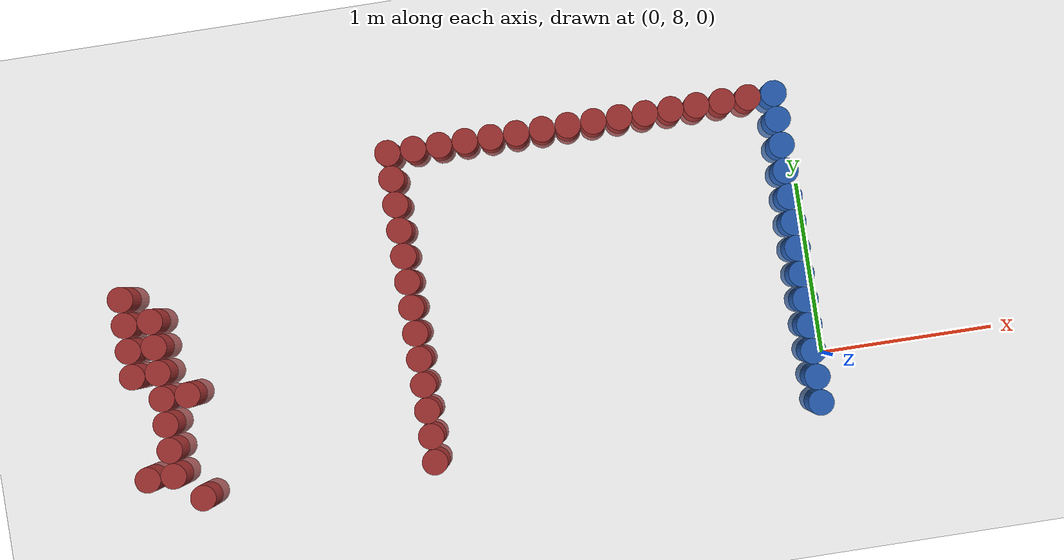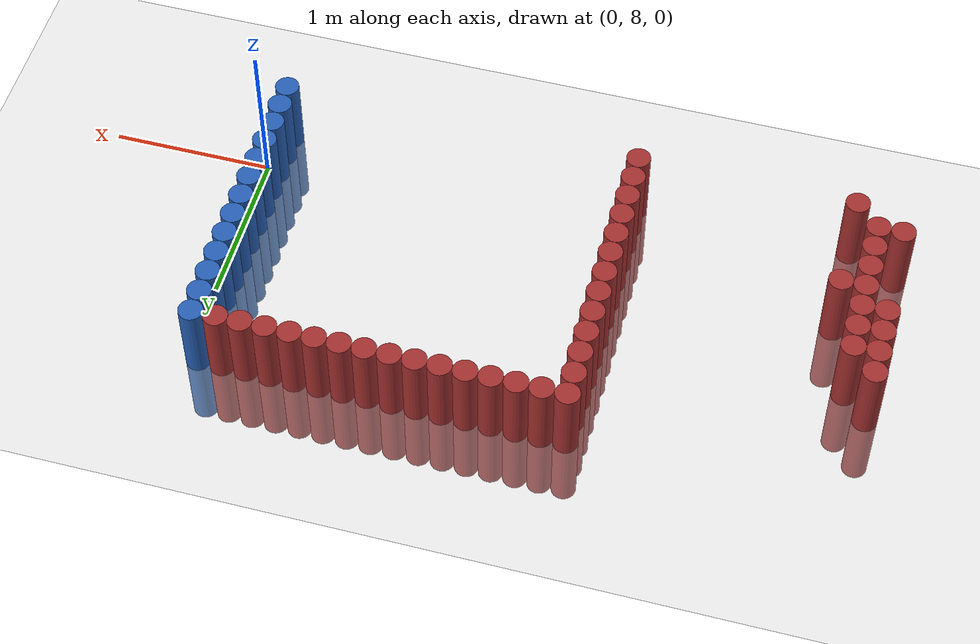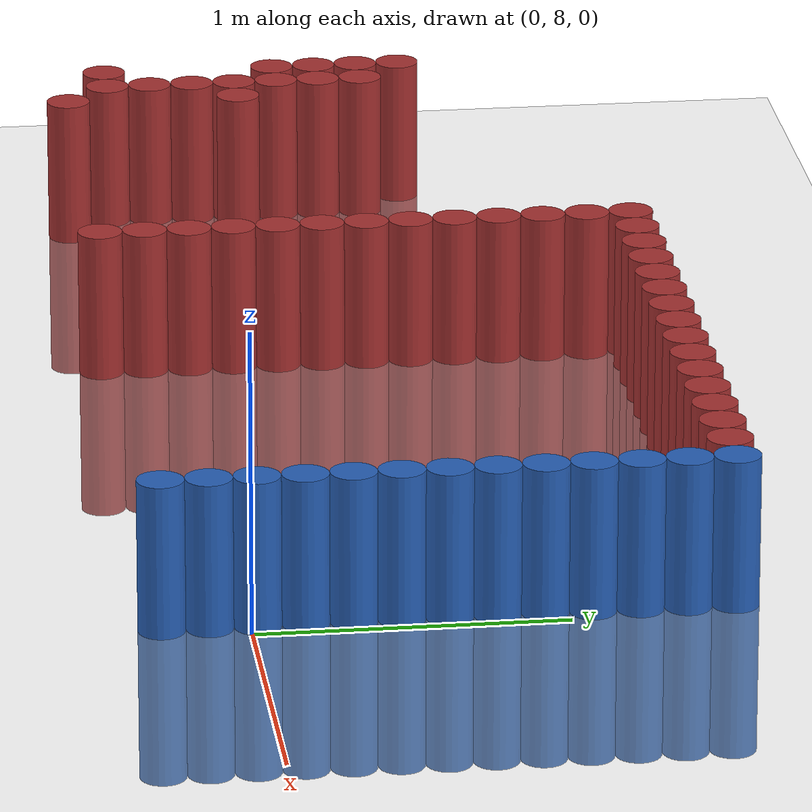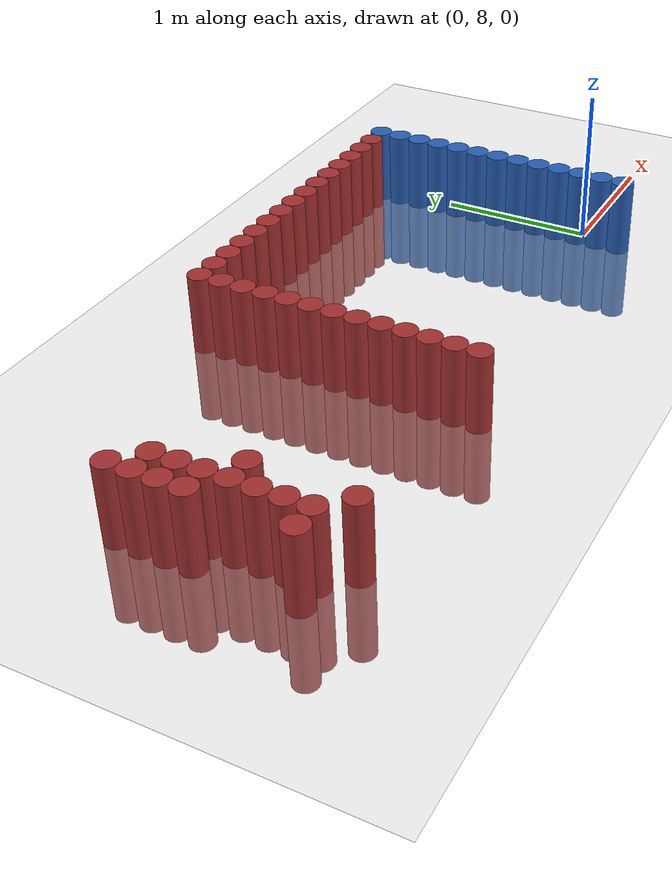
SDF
<sdf version="1.6">
 <world name="default">
  <model name="ground_plane">
   <static>1</static>
   <link name="link">
    <collision name="collision">
     <geometry><plane><normal>0 0 1</normal><size>100 100</size></plane></geometry>
     <surface><friction><ode><mu>100</mu><mu2>50</mu2></ode></friction></surface>
    </collision>
    <visual name="visual">
     <cast_shadows>0</cast_shadows>
     <geometry><plane><normal>0 0 1</normal><size>100 100</size></plane></geometry>
     <material>
      <script><uri>file://media/materials/scripts/gazebo.material</uri><name>Gazebo/Grey</name></script>
     </material>
    </visual>
   </link>
  </model>
  <model name="unit_cylinder_258">
   <static>1</static>
   <pose>-3.975000 7.875000 0.000000 0.000000 0.000000 0.000000</pose>
   <link name="link">
    <inertial>
     <mass>1</mass>
     <inertia><ixx>0.145833</ixx><ixy>0</ixy><ixz>0</ixz><iyy>0.145833</iyy><iyz>0</iyz><izz>0.125</izz></inertia>
    </inertial>
    <collision name="collision">
     <geometry><cylinder><radius>0.075000</radius><length>1</length></cylinder></geometry>
    </collision>
    <visual name="visual">
     <geometry><cylinder><radius>0.075000</radius><length>1</length></cylinder></geometry>
     <material>
      <ambient>0.648000 0.192000 0.192000 1</ambient>
      <diffuse>0.648000 0.192000 0.192000 1</diffuse>
     </material>
     <material>
      <script><name>Gazebo/Grey</name><uri>file://media/materials/scripts/gazebo.material</uri></script>
     </material>
    </visual>
   </link>
  </model>
  <model name="unit_cylinder_259">
   <static>1</static>
   <pose>-3.975000 8.475000 0.000000 0.000000 0.000000 0.000000</pose>
   <link name="link">
    <inertial>
     <mass>1</mass>
     <inertia><ixx>0.145833</ixx><ixy>0</ixy><ixz>0</ixz><iyy>0.145833</iyy><iyz>0</iyz><izz>0.125</izz></inertia>
    </inertial>
    <collision name="collision">
     <geometry><cylinder><radius>0.075000</radius><length>1</length></cylinder></geometry>
    </collision>
    <visual name="visual">
     <geometry><cylinder><radius>0.075000</radius><length>1</length></cylinder></geometry>
     <material>
      <ambient>0.648000 0.192000 0.192000 1</ambient>
      <diffuse>0.648000 0.192000 0.192000 1</diffuse>
     </material>
     <material>
      <script><name>Gazebo/Grey</name><uri>file://media/materials/scripts/gazebo.material</uri></script>
     </material>
    </visual>
   </link>
  </model>
  <model name="unit_cylinder_260">
   <static>1</static>
   <pose>-3.975000 8.625000 0.000000 0.000000 0.000000 0.000000</pose>
   <link name="link">
    <inertial>
     <mass>1</mass>
     <inertia><ixx>0.145833</ixx><ixy>0</ixy><ixz>0</ixz><iyy>0.145833</iyy><iyz>0</iyz><izz>0.125</izz></inertia>
    </inertial>
    <collision name="collision">
     <geometry><cylinder><radius>0.075000</radius><length>1</length></cylinder></geometry>
    </collision>
    <visual name="visual">
     <geometry><cylinder><radius>0.075000</radius><length>1</length></cylinder></geometry>
     <material>
      <ambient>0.648000 0.192000 0.192000 1</ambient>
      <diffuse>0.648000 0.192000 0.192000 1</diffuse>
     </material>
     <material>
      <script><name>Gazebo/Grey</name><uri>file://media/materials/scripts/gazebo.material</uri></script>
     </material>
    </visual>
   </link>
  </model>
  <model name="unit_cylinder_261">
   <static>1</static>
   <pose>-3.975000 8.775000 0.000000 0.000000 0.000000 0.000000</pose>
   <link name="link">
    <inertial>
     <mass>1</mass>
     <inertia><ixx>0.145833</ixx><ixy>0</ixy><ixz>0</ixz><iyy>0.145833</iyy><iyz>0</iyz><izz>0.125</izz></inertia>
    </inertial>
    <collision name="collision">
     <geometry><cylinder><radius>0.075000</radius><length>1</length></cylinder></geometry>
    </collision>
    <visual name="visual">
     <geometry><cylinder><radius>0.075000</radius><length>1</length></cylinder></geometry>
     <material>
      <ambient>0.648000 0.192000 0.192000 1</ambient>
      <diffuse>0.648000 0.192000 0.192000 1</diffuse>
     </material>
     <material>
      <script><name>Gazebo/Grey</name><uri>file://media/materials/scripts/gazebo.material</uri></script>
     </material>
    </visual>
   </link>
  </model>
  <model name="unit_cylinder_262">
   <static>1</static>
   <pose>-3.975000 8.925000 0.000000 0.000000 0.000000 0.000000</pose>
   <link name="link">
    <inertial>
     <mass>1</mass>
     <inertia><ixx>0.145833</ixx><ixy>0</ixy><ixz>0</ixz><iyy>0.145833</iyy><iyz>0</iyz><izz>0.125</izz></inertia>
    </inertial>
    <collision name="collision">
     <geometry><cylinder><radius>0.075000</radius><length>1</length></cylinder></geometry>
    </collision>
    <visual name="visual">
     <geometry><cylinder><radius>0.075000</radius><length>1</length></cylinder></geometry>
     <material>
      <ambient>0.648000 0.192000 0.192000 1</ambient>
      <diffuse>0.648000 0.192000 0.192000 1</diffuse>
     </material>
     <material>
      <script><name>Gazebo/Grey</name><uri>file://media/materials/scripts/gazebo.material</uri></script>
     </material>
    </visual>
   </link>
  </model>
  <model name="unit_cylinder_273">
   <static>1</static>
   <pose>-3.825000 7.875000 0.000000 0.000000 0.000000 0.000000</pose>
   <link name="link">
    <inertial>
     <mass>1</mass>
     <inertia><ixx>0.145833</ixx><ixy>0</ixy><ixz>0</ixz><iyy>0.145833</iyy><iyz>0</iyz><izz>0.125</izz></inertia>
    </inertial>
    <collision name="collision">
     <geometry><cylinder><radius>0.075000</radius><length>1</length></cylinder></geometry>
    </collision>
    <visual name="visual">
     <geometry><cylinder><radius>0.075000</radius><length>1</length></cylinder></geometry>
     <material>
      <ambient>0.648000 0.192000 0.192000 1</ambient>
      <diffuse>0.648000 0.192000 0.192000 1</diffuse>
     </material>
     <material>
      <script><name>Gazebo/Grey</name><uri>file://media/materials/scripts/gazebo.material</uri></script>
     </material>
    </visual>
   </link>
  </model>
  <model name="unit_cylinder_274">
   <static>1</static>
   <pose>-3.825000 8.025000 0.000000 0.000000 0.000000 0.000000</pose>
   <link name="link">
    <inertial>
     <mass>1</mass>
     <inertia><ixx>0.145833</ixx><ixy>0</ixy><ixz>0</ixz><iyy>0.145833</iyy><iyz>0</iyz><izz>0.125</izz></inertia>
    </inertial>
    <collision name="collision">
     <geometry><cylinder><radius>0.075000</radius><length>1</length></cylinder></geometry>
    </collision>
    <visual name="visual">
     <geometry><cylinder><radius>0.075000</radius><length>1</length></cylinder></geometry>
     <material>
      <ambient>0.648000 0.192000 0.192000 1</ambient>
      <diffuse>0.648000 0.192000 0.192000 1</diffuse>
     </material>
     <material>
      <script><name>Gazebo/Grey</name><uri>file://media/materials/scripts/gazebo.material</uri></script>
     </material>
    </visual>
   </link>
  </model>
  <model name="unit_cylinder_275">
   <static>1</static>
   <pose>-3.825000 8.175000 0.000000 0.000000 0.000000 0.000000</pose>
   <link name="link">
    <inertial>
     <mass>1</mass>
     <inertia><ixx>0.145833</ixx><ixy>0</ixy><ixz>0</ixz><iyy>0.145833</iyy><iyz>0</iyz><izz>0.125</izz></inertia>
    </inertial>
    <collision name="collision">
     <geometry><cylinder><radius>0.075000</radius><length>1</length></cylinder></geometry>
    </collision>
    <visual name="visual">
     <geometry><cylinder><radius>0.075000</radius><length>1</length></cylinder></geometry>
     <material>
      <ambient>0.648000 0.192000 0.192000 1</ambient>
      <diffuse>0.648000 0.192000 0.192000 1</diffuse>
     </material>
     <material>
      <script><name>Gazebo/Grey</name><uri>file://media/materials/scripts/gazebo.material</uri></script>
     </material>
    </visual>
   </link>
  </model>
  <model name="unit_cylinder_276">
   <static>1</static>
   <pose>-3.825000 8.325000 0.000000 0.000000 0.000000 0.000000</pose>
   <link name="link">
    <inertial>
     <mass>1</mass>
     <inertia><ixx>0.145833</ixx><ixy>0</ixy><ixz>0</ixz><iyy>0.145833</iyy><iyz>0</iyz><izz>0.125</izz></inertia>
    </inertial>
    <collision name="collision">
     <geometry><cylinder><radius>0.075000</radius><length>1</length></cylinder></geometry>
    </collision>
    <visual name="visual">
     <geometry><cylinder><radius>0.075000</radius><length>1</length></cylinder></geometry>
     <material>
      <ambient>0.648000 0.192000 0.192000 1</ambient>
      <diffuse>0.648000 0.192000 0.192000 1</diffuse>
     </material>
     <material>
      <script><name>Gazebo/Grey</name><uri>file://media/materials/scripts/gazebo.material</uri></script>
     </material>
    </visual>
   </link>
  </model>
  <model name="unit_cylinder_277">
   <static>1</static>
   <pose>-3.825000 8.475000 0.000000 0.000000 0.000000 0.000000</pose>
   <link name="link">
    <inertial>
     <mass>1</mass>
     <inertia><ixx>0.145833</ixx><ixy>0</ixy><ixz>0</ixz><iyy>0.145833</iyy><iyz>0</iyz><izz>0.125</izz></inertia>
    </inertial>
    <collision name="collision">
     <geometry><cylinder><radius>0.075000</radius><length>1</length></cylinder></geometry>
    </collision>
    <visual name="visual">
     <geometry><cylinder><radius>0.075000</radius><length>1</length></cylinder></geometry>
     <material>
      <ambient>0.648000 0.192000 0.192000 1</ambient>
      <diffuse>0.648000 0.192000 0.192000 1</diffuse>
     </material>
     <material>
      <script><name>Gazebo/Grey</name><uri>file://media/materials/scripts/gazebo.material</uri></script>
     </material>
    </visual>
   </link>
  </model>
  <model name="unit_cylinder_278">
   <static>1</static>
   <pose>-3.825000 8.625000 0.000000 0.000000 0.000000 0.000000</pose>
   <link name="link">
    <inertial>
     <mass>1</mass>
     <inertia><ixx>0.145833</ixx><ixy>0</ixy><ixz>0</ixz><iyy>0.145833</iyy><iyz>0</iyz><izz>0.125</izz></inertia>
    </inertial>
    <collision name="collision">
     <geometry><cylinder><radius>0.075000</radius><length>1</length></cylinder></geometry>
    </collision>
    <visual name="visual">
     <geometry><cylinder><radius>0.075000</radius><length>1</length></cylinder></geometry>
     <material>
      <ambient>0.648000 0.192000 0.192000 1</ambient>
      <diffuse>0.648000 0.192000 0.192000 1</diffuse>
     </material>
     <material>
      <script><name>Gazebo/Grey</name><uri>file://media/materials/scripts/gazebo.material</uri></script>
     </material>
    </visual>
   </link>
  </model>
  <model name="unit_cylinder_279">
   <static>1</static>
   <pose>-3.825000 8.775000 0.000000 0.000000 0.000000 0.000000</pose>
   <link name="link">
    <inertial>
     <mass>1</mass>
     <inertia><ixx>0.145833</ixx><ixy>0</ixy><ixz>0</ixz><iyy>0.145833</iyy><iyz>0</iyz><izz>0.125</izz></inertia>
    </inertial>
    <collision name="collision">
     <geometry><cylinder><radius>0.075000</radius><length>1</length></cylinder></geometry>
    </collision>
    <visual name="visual">
     <geometry><cylinder><radius>0.075000</radius><length>1</length></cylinder></geometry>
     <material>
      <ambient>0.648000 0.192000 0.192000 1</ambient>
      <diffuse>0.648000 0.192000 0.192000 1</diffuse>
     </material>
     <material>
      <script><name>Gazebo/Grey</name><uri>file://media/materials/scripts/gazebo.material</uri></script>
     </material>
    </visual>
   </link>
  </model>
  <model name="unit_cylinder_287">
   <static>1</static>
   <pose>-3.675000 7.725000 0.000000 0.000000 0.000000 0.000000</pose>
   <link name="link">
    <inertial>
     <mass>1</mass>
     <inertia><ixx>0.145833</ixx><ixy>0</ixy><ixz>0</ixz><iyy>0.145833</iyy><iyz>0</iyz><izz>0.125</izz></inertia>
    </inertial>
    <collision name="collision">
     <geometry><cylinder><radius>0.075000</radius><length>1</length></cylinder></geometry>
    </collision>
    <visual name="visual">
     <geometry><cylinder><radius>0.075000</radius><length>1</length></cylinder></geometry>
     <material>
      <ambient>0.648000 0.192000 0.192000 1</ambient>
      <diffuse>0.648000 0.192000 0.192000 1</diffuse>
     </material>
     <material>
      <script><name>Gazebo/Grey</name><uri>file://media/materials/scripts/gazebo.material</uri></script>
     </material>
    </visual>
   </link>
  </model>
  <model name="unit_cylinder_288">
   <static>1</static>
   <pose>-3.675000 8.325000 0.000000 0.000000 0.000000 0.000000</pose>
   <link name="link">
    <inertial>
     <mass>1</mass>
     <inertia><ixx>0.145833</ixx><ixy>0</ixy><ixz>0</ixz><iyy>0.145833</iyy><iyz>0</iyz><izz>0.125</izz></inertia>
    </inertial>
    <collision name="collision">
     <geometry><cylinder><radius>0.075000</radius><length>1</length></cylinder></geometry>
    </collision>
    <visual name="visual">
     <geometry><cylinder><radius>0.075000</radius><length>1</length></cylinder></geometry>
     <material>
      <ambient>0.648000 0.192000 0.192000 1</ambient>
      <diffuse>0.648000 0.192000 0.192000 1</diffuse>
     </material>
     <material>
      <script><name>Gazebo/Grey</name><uri>file://media/materials/scripts/gazebo.material</uri></script>
     </material>
    </visual>
   </link>
  </model>
  <model name="unit_cylinder_306">
   <static>1</static>
   <pose>-2.325000 7.725000 0.000000 0.000000 0.000000 0.000000</pose>
   <link name="link">
    <inertial>
     <mass>1</mass>
     <inertia><ixx>0.145833</ixx><ixy>0</ixy><ixz>0</ixz><iyy>0.145833</iyy><iyz>0</iyz><izz>0.125</izz></inertia>
    </inertial>
    <collision name="collision">
     <geometry><cylinder><radius>0.075000</radius><length>1</length></cylinder></geometry>
    </collision>
    <visual name="visual">
     <geometry><cylinder><radius>0.075000</radius><length>1</length></cylinder></geometry>
     <material>
      <ambient>0.648000 0.192000 0.192000 1</ambient>
      <diffuse>0.648000 0.192000 0.192000 1</diffuse>
     </material>
     <material>
      <script><name>Gazebo/Grey</name><uri>file://media/materials/scripts/gazebo.material</uri></script>
     </material>
    </visual>
   </link>
  </model>
  <model name="unit_cylinder_307">
   <static>1</static>
   <pose>-2.325000 7.875000 0.000000 0.000000 0.000000 0.000000</pose>
   <link name="link">
    <inertial>
     <mass>1</mass>
     <inertia><ixx>0.145833</ixx><ixy>0</ixy><ixz>0</ixz><iyy>0.145833</iyy><iyz>0</iyz><izz>0.125</izz></inertia>
    </inertial>
    <collision name="collision">
     <geometry><cylinder><radius>0.075000</radius><length>1</length></cylinder></geometry>
    </collision>
    <visual name="visual">
     <geometry><cylinder><radius>0.075000</radius><length>1</length></cylinder></geometry>
     <material>
      <ambient>0.648000 0.192000 0.192000 1</ambient>
      <diffuse>0.648000 0.192000 0.192000 1</diffuse>
     </material>
     <material>
      <script><name>Gazebo/Grey</name><uri>file://media/materials/scripts/gazebo.material</uri></script>
     </material>
    </visual>
   </link>
  </model>
  <model name="unit_cylinder_308">
   <static>1</static>
   <pose>-2.325000 8.025000 0.000000 0.000000 0.000000 0.000000</pose>
   <link name="link">
    <inertial>
     <mass>1</mass>
     <inertia><ixx>0.145833</ixx><ixy>0</ixy><ixz>0</ixz><iyy>0.145833</iyy><iyz>0</iyz><izz>0.125</izz></inertia>
    </inertial>
    <collision name="collision">
     <geometry><cylinder><radius>0.075000</radius><length>1</length></cylinder></geometry>
    </collision>
    <visual name="visual">
     <geometry><cylinder><radius>0.075000</radius><length>1</length></cylinder></geometry>
     <material>
      <ambient>0.648000 0.192000 0.192000 1</ambient>
      <diffuse>0.648000 0.192000 0.192000 1</diffuse>
     </material>
     <material>
      <script><name>Gazebo/Grey</name><uri>file://media/materials/scripts/gazebo.material</uri></script>
     </material>
    </visual>
   </link>
  </model>
  <model name="unit_cylinder_309">
   <static>1</static>
   <pose>-2.325000 8.175000 0.000000 0.000000 0.000000 0.000000</pose>
   <link name="link">
    <inertial>
     <mass>1</mass>
     <inertia><ixx>0.145833</ixx><ixy>0</ixy><ixz>0</ixz><iyy>0.145833</iyy><iyz>0</iyz><izz>0.125</izz></inertia>
    </inertial>
    <collision name="collision">
     <geometry><cylinder><radius>0.075000</radius><length>1</length></cylinder></geometry>
    </collision>
    <visual name="visual">
     <geometry><cylinder><radius>0.075000</radius><length>1</length></cylinder></geometry>
     <material>
      <ambient>0.648000 0.192000 0.192000 1</ambient>
      <diffuse>0.648000 0.192000 0.192000 1</diffuse>
     </material>
     <material>
      <script><name>Gazebo/Grey</name><uri>file://media/materials/scripts/gazebo.material</uri></script>
     </material>
    </visual>
   </link>
  </model>
  <model name="unit_cylinder_310">
   <static>1</static>
   <pose>-2.325000 8.325000 0.000000 0.000000 0.000000 0.000000</pose>
   <link name="link">
    <inertial>
     <mass>1</mass>
     <inertia><ixx>0.145833</ixx><ixy>0</ixy><ixz>0</ixz><iyy>0.145833</iyy><iyz>0</iyz><izz>0.125</izz></inertia>
    </inertial>
    <collision name="collision">
     <geometry><cylinder><radius>0.075000</radius><length>1</length></cylinder></geometry>
    </collision>
    <visual name="visual">
     <geometry><cylinder><radius>0.075000</radius><length>1</length></cylinder></geometry>
     <material>
      <ambient>0.648000 0.192000 0.192000 1</ambient>
      <diffuse>0.648000 0.192000 0.192000 1</diffuse>
     </material>
     <material>
      <script><name>Gazebo/Grey</name><uri>file://media/materials/scripts/gazebo.material</uri></script>
     </material>
    </visual>
   </link>
  </model>
  <model name="unit_cylinder_311">
   <static>1</static>
   <pose>-2.325000 8.475000 0.000000 0.000000 0.000000 0.000000</pose>
   <link name="link">
    <inertial>
     <mass>1</mass>
     <inertia><ixx>0.145833</ixx><ixy>0</ixy><ixz>0</ixz><iyy>0.145833</iyy><iyz>0</iyz><izz>0.125</izz></inertia>
    </inertial>
    <collision name="collision">
     <geometry><cylinder><radius>0.075000</radius><length>1</length></cylinder></geometry>
    </collision>
    <visual name="visual">
     <geometry><cylinder><radius>0.075000</radius><length>1</length></cylinder></geometry>
     <material>
      <ambient>0.648000 0.192000 0.192000 1</ambient>
      <diffuse>0.648000 0.192000 0.192000 1</diffuse>
     </material>
     <material>
      <script><name>Gazebo/Grey</name><uri>file://media/materials/scripts/gazebo.material</uri></script>
     </material>
    </visual>
   </link>
  </model>
  <model name="unit_cylinder_312">
   <static>1</static>
   <pose>-2.325000 8.625000 0.000000 0.000000 0.000000 0.000000</pose>
   <link name="link">
    <inertial>
     <mass>1</mass>
     <inertia><ixx>0.145833</ixx><ixy>0</ixy><ixz>0</ixz><iyy>0.145833</iyy><iyz>0</iyz><izz>0.125</izz></inertia>
    </inertial>
    <collision name="collision">
     <geometry><cylinder><radius>0.075000</radius><length>1</length></cylinder></geometry>
    </collision>
    <visual name="visual">
     <geometry><cylinder><radius>0.075000</radius><length>1</length></cylinder></geometry>
     <material>
      <ambient>0.648000 0.192000 0.192000 1</ambient>
      <diffuse>0.648000 0.192000 0.192000 1</diffuse>
     </material>
     <material>
      <script><name>Gazebo/Grey</name><uri>file://media/materials/scripts/gazebo.material</uri></script>
     </material>
    </visual>
   </link>
  </model>
  <model name="unit_cylinder_313">
   <static>1</static>
   <pose>-2.325000 8.775000 0.000000 0.000000 0.000000 0.000000</pose>
   <link name="link">
    <inertial>
     <mass>1</mass>
     <inertia><ixx>0.145833</ixx><ixy>0</ixy><ixz>0</ixz><iyy>0.145833</iyy><iyz>0</iyz><izz>0.125</izz></inertia>
    </inertial>
    <collision name="collision">
     <geometry><cylinder><radius>0.075000</radius><length>1</length></cylinder></geometry>
    </collision>
    <visual name="visual">
     <geometry><cylinder><radius>0.075000</radius><length>1</length></cylinder></geometry>
     <material>
      <ambient>0.648000 0.192000 0.192000 1</ambient>
      <diffuse>0.648000 0.192000 0.192000 1</diffuse>
     </material>
     <material>
      <script><name>Gazebo/Grey</name><uri>file://media/materials/scripts/gazebo.material</uri></script>
     </material>
    </visual>
   </link>
  </model>
  <model name="unit_cylinder_314">
   <static>1</static>
   <pose>-2.325000 8.925000 0.000000 0.000000 0.000000 0.000000</pose>
   <link name="link">
    <inertial>
     <mass>1</mass>
     <inertia><ixx>0.145833</ixx><ixy>0</ixy><ixz>0</ixz><iyy>0.145833</iyy><iyz>0</iyz><izz>0.125</izz></inertia>
    </inertial>
    <collision name="collision">
     <geometry><cylinder><radius>0.075000</radius><length>1</length></cylinder></geometry>
    </collision>
    <visual name="visual">
     <geometry><cylinder><radius>0.075000</radius><length>1</length></cylinder></geometry>
     <material>
      <ambient>0.648000 0.192000 0.192000 1</ambient>
      <diffuse>0.648000 0.192000 0.192000 1</diffuse>
     </material>
     <material>
      <script><name>Gazebo/Grey</name><uri>file://media/materials/scripts/gazebo.material</uri></script>
     </material>
    </visual>
   </link>
  </model>
  <model name="unit_cylinder_315">
   <static>1</static>
   <pose>-2.325000 9.075000 0.000000 0.000000 0.000000 0.000000</pose>
   <link name="link">
    <inertial>
     <mass>1</mass>
     <inertia><ixx>0.145833</ixx><ixy>0</ixy><ixz>0</ixz><iyy>0.145833</iyy><iyz>0</iyz><izz>0.125</izz></inertia>
    </inertial>
    <collision name="collision">
     <geometry><cylinder><radius>0.075000</radius><length>1</length></cylinder></geometry>
    </collision>
    <visual name="visual">
     <geometry><cylinder><radius>0.075000</radius><length>1</length></cylinder></geometry>
     <material>
      <ambient>0.648000 0.192000 0.192000 1</ambient>
      <diffuse>0.648000 0.192000 0.192000 1</diffuse>
     </material>
     <material>
      <script><name>Gazebo/Grey</name><uri>file://media/materials/scripts/gazebo.material</uri></script>
     </material>
    </visual>
   </link>
  </model>
  <model name="unit_cylinder_316">
   <static>1</static>
   <pose>-2.325000 9.225000 0.000000 0.000000 0.000000 0.000000</pose>
   <link name="link">
    <inertial>
     <mass>1</mass>
     <inertia><ixx>0.145833</ixx><ixy>0</ixy><ixz>0</ixz><iyy>0.145833</iyy><iyz>0</iyz><izz>0.125</izz></inertia>
    </inertial>
    <collision name="collision">
     <geometry><cylinder><radius>0.075000</radius><length>1</length></cylinder></geometry>
    </collision>
    <visual name="visual">
     <geometry><cylinder><radius>0.075000</radius><length>1</length></cylinder></geometry>
     <material>
      <ambient>0.648000 0.192000 0.192000 1</ambient>
      <diffuse>0.648000 0.192000 0.192000 1</diffuse>
     </material>
     <material>
      <script><name>Gazebo/Grey</name><uri>file://media/materials/scripts/gazebo.material</uri></script>
     </material>
    </visual>
   </link>
  </model>
  <model name="unit_cylinder_317">
   <static>1</static>
   <pose>-2.325000 9.375000 0.000000 0.000000 0.000000 0.000000</pose>
   <link name="link">
    <inertial>
     <mass>1</mass>
     <inertia><ixx>0.145833</ixx><ixy>0</ixy><ixz>0</ixz><iyy>0.145833</iyy><iyz>0</iyz><izz>0.125</izz></inertia>
    </inertial>
    <collision name="collision">
     <geometry><cylinder><radius>0.075000</radius><length>1</length></cylinder></geometry>
    </collision>
    <visual name="visual">
     <geometry><cylinder><radius>0.075000</radius><length>1</length></cylinder></geometry>
     <material>
      <ambient>0.648000 0.192000 0.192000 1</ambient>
      <diffuse>0.648000 0.192000 0.192000 1</diffuse>
     </material>
     <material>
      <script><name>Gazebo/Grey</name><uri>file://media/materials/scripts/gazebo.material</uri></script>
     </material>
    </visual>
   </link>
  </model>
  <model name="unit_cylinder_318">
   <static>1</static>
   <pose>-2.325000 9.525000 0.000000 0.000000 0.000000 0.000000</pose>
   <link name="link">
    <inertial>
     <mass>1</mass>
     <inertia><ixx>0.145833</ixx><ixy>0</ixy><ixz>0</ixz><iyy>0.145833</iyy><iyz>0</iyz><izz>0.125</izz></inertia>
    </inertial>
    <collision name="collision">
     <geometry><cylinder><radius>0.075000</radius><length>1</length></cylinder></geometry>
    </collision>
    <visual name="visual">
     <geometry><cylinder><radius>0.075000</radius><length>1</length></cylinder></geometry>
     <material>
      <ambient>0.648000 0.192000 0.192000 1</ambient>
      <diffuse>0.648000 0.192000 0.192000 1</diffuse>
     </material>
     <material>
      <script><name>Gazebo/Grey</name><uri>file://media/materials/scripts/gazebo.material</uri></script>
     </material>
    </visual>
   </link>
  </model>
  <model name="unit_cylinder_320">
   <static>1</static>
   <pose>-2.175000 9.525000 0.000000 0.000000 0.000000 0.000000</pose>
   <link name="link">
    <inertial>
     <mass>1</mass>
     <inertia><ixx>0.145833</ixx><ixy>0</ixy><ixz>0</ixz><iyy>0.145833</iyy><iyz>0</iyz><izz>0.125</izz></inertia>
    </inertial>
    <collision name="collision">
     <geometry><cylinder><radius>0.075000</radius><length>1</length></cylinder></geometry>
    </collision>
    <visual name="visual">
     <geometry><cylinder><radius>0.075000</radius><length>1</length></cylinder></geometry>
     <material>
      <ambient>0.648000 0.192000 0.192000 1</ambient>
      <diffuse>0.648000 0.192000 0.192000 1</diffuse>
     </material>
     <material>
      <script><name>Gazebo/Grey</name><uri>file://media/materials/scripts/gazebo.material</uri></script>
     </material>
    </visual>
   </link>
  </model>
  <model name="unit_cylinder_322">
   <static>1</static>
   <pose>-2.025000 9.525000 0.000000 0.000000 0.000000 0.000000</pose>
   <link name="link">
    <inertial>
     <mass>1</mass>
     <inertia><ixx>0.145833</ixx><ixy>0</ixy><ixz>0</ixz><iyy>0.145833</iyy><iyz>0</iyz><izz>0.125</izz></inertia>
    </inertial>
    <collision name="collision">
     <geometry><cylinder><radius>0.075000</radius><length>1</length></cylinder></geometry>
    </collision>
    <visual name="visual">
     <geometry><cylinder><radius>0.075000</radius><length>1</length></cylinder></geometry>
     <material>
      <ambient>0.648000 0.192000 0.192000 1</ambient>
      <diffuse>0.648000 0.192000 0.192000 1</diffuse>
     </material>
     <material>
      <script><name>Gazebo/Grey</name><uri>file://media/materials/scripts/gazebo.material</uri></script>
     </material>
    </visual>
   </link>
  </model>
  <model name="unit_cylinder_324">
   <static>1</static>
   <pose>-1.875000 9.525000 0.000000 0.000000 0.000000 0.000000</pose>
   <link name="link">
    <inertial>
     <mass>1</mass>
     <inertia><ixx>0.145833</ixx><ixy>0</ixy><ixz>0</ixz><iyy>0.145833</iyy><iyz>0</iyz><izz>0.125</izz></inertia>
    </inertial>
    <collision name="collision">
     <geometry><cylinder><radius>0.075000</radius><length>1</length></cylinder></geometry>
    </collision>
    <visual name="visual">
     <geometry><cylinder><radius>0.075000</radius><length>1</length></cylinder></geometry>
     <material>
      <ambient>0.648000 0.192000 0.192000 1</ambient>
      <diffuse>0.648000 0.192000 0.192000 1</diffuse>
     </material>
     <material>
      <script><name>Gazebo/Grey</name><uri>file://media/materials/scripts/gazebo.material</uri></script>
     </material>
    </visual>
   </link>
  </model>
  <model name="unit_cylinder_326">
   <static>1</static>
   <pose>-1.725000 9.525000 0.000000 0.000000 0.000000 0.000000</pose>
   <link name="link">
    <inertial>
     <mass>1</mass>
     <inertia><ixx>0.145833</ixx><ixy>0</ixy><ixz>0</ixz><iyy>0.145833</iyy><iyz>0</iyz><izz>0.125</izz></inertia>
    </inertial>
    <collision name="collision">
     <geometry><cylinder><radius>0.075000</radius><length>1</length></cylinder></geometry>
    </collision>
    <visual name="visual">
     <geometry><cylinder><radius>0.075000</radius><length>1</length></cylinder></geometry>
     <material>
      <ambient>0.648000 0.192000 0.192000 1</ambient>
      <diffuse>0.648000 0.192000 0.192000 1</diffuse>
     </material>
     <material>
      <script><name>Gazebo/Grey</name><uri>file://media/materials/scripts/gazebo.material</uri></script>
     </material>
    </visual>
   </link>
  </model>
  <model name="unit_cylinder_328">
   <static>1</static>
   <pose>-1.575000 9.525000 0.000000 0.000000 0.000000 0.000000</pose>
   <link name="link">
    <inertial>
     <mass>1</mass>
     <inertia><ixx>0.145833</ixx><ixy>0</ixy><ixz>0</ixz><iyy>0.145833</iyy><iyz>0</iyz><izz>0.125</izz></inertia>
    </inertial>
    <collision name="collision">
     <geometry><cylinder><radius>0.075000</radius><length>1</length></cylinder></geometry>
    </collision>
    <visual name="visual">
     <geometry><cylinder><radius>0.075000</radius><length>1</length></cylinder></geometry>
     <material>
      <ambient>0.648000 0.192000 0.192000 1</ambient>
      <diffuse>0.648000 0.192000 0.192000 1</diffuse>
     </material>
     <material>
      <script><name>Gazebo/Grey</name><uri>file://media/materials/scripts/gazebo.material</uri></script>
     </material>
    </visual>
   </link>
  </model>
  <model name="unit_cylinder_330">
   <static>1</static>
   <pose>-1.425000 9.525000 0.000000 0.000000 0.000000 0.000000</pose>
   <link name="link">
    <inertial>
     <mass>1</mass>
     <inertia><ixx>0.145833</ixx><ixy>0</ixy><ixz>0</ixz><iyy>0.145833</iyy><iyz>0</iyz><izz>0.125</izz></inertia>
    </inertial>
    <collision name="collision">
     <geometry><cylinder><radius>0.075000</radius><length>1</length></cylinder></geometry>
    </collision>
    <visual name="visual">
     <geometry><cylinder><radius>0.075000</radius><length>1</length></cylinder></geometry>
     <material>
      <ambient>0.648000 0.192000 0.192000 1</ambient>
      <diffuse>0.648000 0.192000 0.192000 1</diffuse>
     </material>
     <material>
      <script><name>Gazebo/Grey</name><uri>file://media/materials/scripts/gazebo.material</uri></script>
     </material>
    </visual>
   </link>
  </model>
  <model name="unit_cylinder_332">
   <static>1</static>
   <pose>-1.275000 9.525000 0.000000 0.000000 0.000000 0.000000</pose>
   <link name="link">
    <inertial>
     <mass>1</mass>
     <inertia><ixx>0.145833</ixx><ixy>0</ixy><ixz>0</ixz><iyy>0.145833</iyy><iyz>0</iyz><izz>0.125</izz></inertia>
    </inertial>
    <collision name="collision">
     <geometry><cylinder><radius>0.075000</radius><length>1</length></cylinder></geometry>
    </collision>
    <visual name="visual">
     <geometry><cylinder><radius>0.075000</radius><length>1</length></cylinder></geometry>
     <material>
      <ambient>0.648000 0.192000 0.192000 1</ambient>
      <diffuse>0.648000 0.192000 0.192000 1</diffuse>
     </material>
     <material>
      <script><name>Gazebo/Grey</name><uri>file://media/materials/scripts/gazebo.material</uri></script>
     </material>
    </visual>
   </link>
  </model>
  <model name="unit_cylinder_334">
   <static>1</static>
   <pose>-1.125000 9.525000 0.000000 0.000000 0.000000 0.000000</pose>
   <link name="link">
    <inertial>
     <mass>1</mass>
     <inertia><ixx>0.145833</ixx><ixy>0</ixy><ixz>0</ixz><iyy>0.145833</iyy><iyz>0</iyz><izz>0.125</izz></inertia>
    </inertial>
    <collision name="collision">
     <geometry><cylinder><radius>0.075000</radius><length>1</length></cylinder></geometry>
    </collision>
    <visual name="visual">
     <geometry><cylinder><radius>0.075000</radius><length>1</length></cylinder></geometry>
     <material>
      <ambient>0.648000 0.192000 0.192000 1</ambient>
      <diffuse>0.648000 0.192000 0.192000 1</diffuse>
     </material>
     <material>
      <script><name>Gazebo/Grey</name><uri>file://media/materials/scripts/gazebo.material</uri></script>
     </material>
    </visual>
   </link>
  </model>
  <model name="unit_cylinder_336">
   <static>1</static>
   <pose>-0.975000 9.525000 0.000000 0.000000 0.000000 0.000000</pose>
   <link name="link">
    <inertial>
     <mass>1</mass>
     <inertia><ixx>0.145833</ixx><ixy>0</ixy><ixz>0</ixz><iyy>0.145833</iyy><iyz>0</iyz><izz>0.125</izz></inertia>
    </inertial>
    <collision name="collision">
     <geometry><cylinder><radius>0.075000</radius><length>1</length></cylinder></geometry>
    </collision>
    <visual name="visual">
     <geometry><cylinder><radius>0.075000</radius><length>1</length></cylinder></geometry>
     <material>
      <ambient>0.648000 0.192000 0.192000 1</ambient>
      <diffuse>0.648000 0.192000 0.192000 1</diffuse>
     </material>
     <material>
      <script><name>Gazebo/Grey</name><uri>file://media/materials/scripts/gazebo.material</uri></script>
     </material>
    </visual>
   </link>
  </model>
  <model name="unit_cylinder_338">
   <static>1</static>
   <pose>-0.825000 9.525000 0.000000 0.000000 0.000000 0.000000</pose>
   <link name="link">
    <inertial>
     <mass>1</mass>
     <inertia><ixx>0.145833</ixx><ixy>0</ixy><ixz>0</ixz><iyy>0.145833</iyy><iyz>0</iyz><izz>0.125</izz></inertia>
    </inertial>
    <collision name="collision">
     <geometry><cylinder><radius>0.075000</radius><length>1</length></cylinder></geometry>
    </collision>
    <visual name="visual">
     <geometry><cylinder><radius>0.075000</radius><length>1</length></cylinder></geometry>
     <material>
      <ambient>0.648000 0.192000 0.192000 1</ambient>
      <diffuse>0.648000 0.192000 0.192000 1</diffuse>
     </material>
     <material>
      <script><name>Gazebo/Grey</name><uri>file://media/materials/scripts/gazebo.material</uri></script>
     </material>
    </visual>
   </link>
  </model>
  <model name="unit_cylinder_340">
   <static>1</static>
   <pose>-0.675000 9.525000 0.000000 0.000000 0.000000 0.000000</pose>
   <link name="link">
    <inertial>
     <mass>1</mass>
     <inertia><ixx>0.145833</ixx><ixy>0</ixy><ixz>0</ixz><iyy>0.145833</iyy><iyz>0</iyz><izz>0.125</izz></inertia>
    </inertial>
    <collision name="collision">
     <geometry><cylinder><radius>0.075000</radius><length>1</length></cylinder></geometry>
    </collision>
    <visual name="visual">
     <geometry><cylinder><radius>0.075000</radius><length>1</length></cylinder></geometry>
     <material>
      <ambient>0.648000 0.192000 0.192000 1</ambient>
      <diffuse>0.648000 0.192000 0.192000 1</diffuse>
     </material>
     <material>
      <script><name>Gazebo/Grey</name><uri>file://media/materials/scripts/gazebo.material</uri></script>
     </material>
    </visual>
   </link>
  </model>
  <model name="unit_cylinder_342">
   <static>1</static>
   <pose>-0.525000 9.525000 0.000000 0.000000 0.000000 0.000000</pose>
   <link name="link">
    <inertial>
     <mass>1</mass>
     <inertia><ixx>0.145833</ixx><ixy>0</ixy><ixz>0</ixz><iyy>0.145833</iyy><iyz>0</iyz><izz>0.125</izz></inertia>
    </inertial>
    <collision name="collision">
     <geometry><cylinder><radius>0.075000</radius><length>1</length></cylinder></geometry>
    </collision>
    <visual name="visual">
     <geometry><cylinder><radius>0.075000</radius><length>1</length></cylinder></geometry>
     <material>
      <ambient>0.648000 0.192000 0.192000 1</ambient>
      <diffuse>0.648000 0.192000 0.192000 1</diffuse>
     </material>
     <material>
      <script><name>Gazebo/Grey</name><uri>file://media/materials/scripts/gazebo.material</uri></script>
     </material>
    </visual>
   </link>
  </model>
  <model name="unit_cylinder_344">
   <static>1</static>
   <pose>-0.375000 9.525000 0.000000 0.000000 0.000000 0.000000</pose>
   <link name="link">
    <inertial>
     <mass>1</mass>
     <inertia><ixx>0.145833</ixx><ixy>0</ixy><ixz>0</ixz><iyy>0.145833</iyy><iyz>0</iyz><izz>0.125</izz></inertia>
    </inertial>
    <collision name="collision">
     <geometry><cylinder><radius>0.075000</radius><length>1</length></cylinder></geometry>
    </collision>
    <visual name="visual">
     <geometry><cylinder><radius>0.075000</radius><length>1</length></cylinder></geometry>
     <material>
      <ambient>0.648000 0.192000 0.192000 1</ambient>
      <diffuse>0.648000 0.192000 0.192000 1</diffuse>
     </material>
     <material>
      <script><name>Gazebo/Grey</name><uri>file://media/materials/scripts/gazebo.material</uri></script>
     </material>
    </visual>
   </link>
  </model>
  <model name="unit_cylinder_346">
   <static>1</static>
   <pose>-0.225000 9.525000 0.000000 0.000000 0.000000 0.000000</pose>
   <link name="link">
    <inertial>
     <mass>1</mass>
     <inertia><ixx>0.145833</ixx><ixy>0</ixy><ixz>0</ixz><iyy>0.145833</iyy><iyz>0</iyz><izz>0.125</izz></inertia>
    </inertial>
    <collision name="collision">
     <geometry><cylinder><radius>0.075000</radius><length>1</length></cylinder></geometry>
    </collision>
    <visual name="visual">
     <geometry><cylinder><radius>0.075000</radius><length>1</length></cylinder></geometry>
     <material>
      <ambient>0.648000 0.192000 0.192000 1</ambient>
      <diffuse>0.648000 0.192000 0.192000 1</diffuse>
     </material>
     <material>
      <script><name>Gazebo/Grey</name><uri>file://media/materials/scripts/gazebo.material</uri></script>
     </material>
    </visual>
   </link>
  </model>
  <model name="unit_cylinder_364">
   <static>1</static>
   <pose>-0.075000 7.725000 0.000000 0.000000 0.000000 0.000000</pose>
   <link name="link">
    <inertial>
     <mass>1</mass>
     <inertia><ixx>0.145833</ixx><ixy>0</ixy><ixz>0</ixz><iyy>0.145833</iyy><iyz>0</iyz><izz>0.125</izz></inertia>
    </inertial>
    <collision name="collision">
     <geometry><cylinder><radius>0.075000</radius><length>1</length></cylinder></geometry>
    </collision>
    <visual name="visual">
     <geometry><cylinder><radius>0.075000</radius><length>1</length></cylinder></geometry>
     <material>
      <ambient>0.152000 0.379000 0.720000 1</ambient>
      <diffuse>0.152000 0.379000 0.720000 1</diffuse>
     </material>
     <material>
      <script><name>Gazebo/Grey</name><uri>file://media/materials/scripts/gazebo.material</uri></script>
     </material>
    </visual>
   </link>
  </model>
  <model name="unit_cylinder_365">
   <static>1</static>
   <pose>-0.075000 7.875000 0.000000 0.000000 0.000000 0.000000</pose>
   <link name="link">
    <inertial>
     <mass>1</mass>
     <inertia><ixx>0.145833</ixx><ixy>0</ixy><ixz>0</ixz><iyy>0.145833</iyy><iyz>0</iyz><izz>0.125</izz></inertia>
    </inertial>
    <collision name="collision">
     <geometry><cylinder><radius>0.075000</radius><length>1</length></cylinder></geometry>
    </collision>
    <visual name="visual">
     <geometry><cylinder><radius>0.075000</radius><length>1</length></cylinder></geometry>
     <material>
      <ambient>0.152000 0.379000 0.720000 1</ambient>
      <diffuse>0.152000 0.379000 0.720000 1</diffuse>
     </material>
     <material>
      <script><name>Gazebo/Grey</name><uri>file://media/materials/scripts/gazebo.material</uri></script>
     </material>
    </visual>
   </link>
  </model>
  <model name="unit_cylinder_366">
   <static>1</static>
   <pose>-0.075000 8.025000 0.000000 0.000000 0.000000 0.000000</pose>
   <link name="link">
    <inertial>
     <mass>1</mass>
     <inertia><ixx>0.145833</ixx><ixy>0</ixy><ixz>0</ixz><iyy>0.145833</iyy><iyz>0</iyz><izz>0.125</izz></inertia>
    </inertial>
    <collision name="collision">
     <geometry><cylinder><radius>0.075000</radius><length>1</length></cylinder></geometry>
    </collision>
    <visual name="visual">
     <geometry><cylinder><radius>0.075000</radius><length>1</length></cylinder></geometry>
     <material>
      <ambient>0.152000 0.379000 0.720000 1</ambient>
      <diffuse>0.152000 0.379000 0.720000 1</diffuse>
     </material>
     <material>
      <script><name>Gazebo/Grey</name><uri>file://media/materials/scripts/gazebo.material</uri></script>
     </material>
    </visual>
   </link>
  </model>
  <model name="unit_cylinder_367">
   <static>1</static>
   <pose>-0.075000 8.175000 0.000000 0.000000 0.000000 0.000000</pose>
   <link name="link">
    <inertial>
     <mass>1</mass>
     <inertia><ixx>0.145833</ixx><ixy>0</ixy><ixz>0</ixz><iyy>0.145833</iyy><iyz>0</iyz><izz>0.125</izz></inertia>
    </inertial>
    <collision name="collision">
     <geometry><cylinder><radius>0.075000</radius><length>1</length></cylinder></geometry>
    </collision>
    <visual name="visual">
     <geometry><cylinder><radius>0.075000</radius><length>1</length></cylinder></geometry>
     <material>
      <ambient>0.152000 0.379000 0.720000 1</ambient>
      <diffuse>0.152000 0.379000 0.720000 1</diffuse>
     </material>
     <material>
      <script><name>Gazebo/Grey</name><uri>file://media/materials/scripts/gazebo.material</uri></script>
     </material>
    </visual>
   </link>
  </model>
  <model name="unit_cylinder_368">
   <static>1</static>
   <pose>-0.075000 8.325000 0.000000 0.000000 0.000000 0.000000</pose>
   <link name="link">
    <inertial>
     <mass>1</mass>
     <inertia><ixx>0.145833</ixx><ixy>0</ixy><ixz>0</ixz><iyy>0.145833</iyy><iyz>0</iyz><izz>0.125</izz></inertia>
    </inertial>
    <collision name="collision">
     <geometry><cylinder><radius>0.075000</radius><length>1</length></cylinder></geometry>
    </collision>
    <visual name="visual">
     <geometry><cylinder><radius>0.075000</radius><length>1</length></cylinder></geometry>
     <material>
      <ambient>0.152000 0.379000 0.720000 1</ambient>
      <diffuse>0.152000 0.379000 0.720000 1</diffuse>
     </material>
     <material>
      <script><name>Gazebo/Grey</name><uri>file://media/materials/scripts/gazebo.material</uri></script>
     </material>
    </visual>
   </link>
  </model>
  <model name="unit_cylinder_369">
   <static>1</static>
   <pose>-0.075000 8.475000 0.000000 0.000000 0.000000 0.000000</pose>
   <link name="link">
    <inertial>
     <mass>1</mass>
     <inertia><ixx>0.145833</ixx><ixy>0</ixy><ixz>0</ixz><iyy>0.145833</iyy><iyz>0</iyz><izz>0.125</izz></inertia>
    </inertial>
    <collision name="collision">
     <geometry><cylinder><radius>0.075000</radius><length>1</length></cylinder></geometry>
    </collision>
    <visual name="visual">
     <geometry><cylinder><radius>0.075000</radius><length>1</length></cylinder></geometry>
     <material>
      <ambient>0.152000 0.379000 0.720000 1</ambient>
      <diffuse>0.152000 0.379000 0.720000 1</diffuse>
     </material>
     <material>
      <script><name>Gazebo/Grey</name><uri>file://media/materials/scripts/gazebo.material</uri></script>
     </material>
    </visual>
   </link>
  </model>
  <model name="unit_cylinder_370">
   <static>1</static>
   <pose>-0.075000 8.625000 0.000000 0.000000 0.000000 0.000000</pose>
   <link name="link">
    <inertial>
     <mass>1</mass>
     <inertia><ixx>0.145833</ixx><ixy>0</ixy><ixz>0</ixz><iyy>0.145833</iyy><iyz>0</iyz><izz>0.125</izz></inertia>
    </inertial>
    <collision name="collision">
     <geometry><cylinder><radius>0.075000</radius><length>1</length></cylinder></geometry>
    </collision>
    <visual name="visual">
     <geometry><cylinder><radius>0.075000</radius><length>1</length></cylinder></geometry>
     <material>
      <ambient>0.152000 0.379000 0.720000 1</ambient>
      <diffuse>0.152000 0.379000 0.720000 1</diffuse>
     </material>
     <material>
      <script><name>Gazebo/Grey</name><uri>file://media/materials/scripts/gazebo.material</uri></script>
     </material>
    </visual>
   </link>
  </model>
  <model name="unit_cylinder_371">
   <static>1</static>
   <pose>-0.075000 8.775000 0.000000 0.000000 0.000000 0.000000</pose>
   <link name="link">
    <inertial>
     <mass>1</mass>
     <inertia><ixx>0.145833</ixx><ixy>0</ixy><ixz>0</ixz><iyy>0.145833</iyy><iyz>0</iyz><izz>0.125</izz></inertia>
    </inertial>
    <collision name="collision">
     <geometry><cylinder><radius>0.075000</radius><length>1</length></cylinder></geometry>
    </collision>
    <visual name="visual">
     <geometry><cylinder><radius>0.075000</radius><length>1</length></cylinder></geometry>
     <material>
      <ambient>0.152000 0.379000 0.720000 1</ambient>
      <diffuse>0.152000 0.379000 0.720000 1</diffuse>
     </material>
     <material>
      <script><name>Gazebo/Grey</name><uri>file://media/materials/scripts/gazebo.material</uri></script>
     </material>
    </visual>
   </link>
  </model>
  <model name="unit_cylinder_372">
   <static>1</static>
   <pose>-0.075000 8.925000 0.000000 0.000000 0.000000 0.000000</pose>
   <link name="link">
    <inertial>
     <mass>1</mass>
     <inertia><ixx>0.145833</ixx><ixy>0</ixy><ixz>0</ixz><iyy>0.145833</iyy><iyz>0</iyz><izz>0.125</izz></inertia>
    </inertial>
    <collision name="collision">
     <geometry><cylinder><radius>0.075000</radius><length>1</length></cylinder></geometry>
    </collision>
    <visual name="visual">
     <geometry><cylinder><radius>0.075000</radius><length>1</length></cylinder></geometry>
     <material>
      <ambient>0.152000 0.379000 0.720000 1</ambient>
      <diffuse>0.152000 0.379000 0.720000 1</diffuse>
     </material>
     <material>
      <script><name>Gazebo/Grey</name><uri>file://media/materials/scripts/gazebo.material</uri></script>
     </material>
    </visual>
   </link>
  </model>
  <model name="unit_cylinder_373">
   <static>1</static>
   <pose>-0.075000 9.075000 0.000000 0.000000 0.000000 0.000000</pose>
   <link name="link">
    <inertial>
     <mass>1</mass>
     <inertia><ixx>0.145833</ixx><ixy>0</ixy><ixz>0</ixz><iyy>0.145833</iyy><iyz>0</iyz><izz>0.125</izz></inertia>
    </inertial>
    <collision name="collision">
     <geometry><cylinder><radius>0.075000</radius><length>1</length></cylinder></geometry>
    </collision>
    <visual name="visual">
     <geometry><cylinder><radius>0.075000</radius><length>1</length></cylinder></geometry>
     <material>
      <ambient>0.152000 0.379000 0.720000 1</ambient>
      <diffuse>0.152000 0.379000 0.720000 1</diffuse>
     </material>
     <material>
      <script><name>Gazebo/Grey</name><uri>file://media/materials/scripts/gazebo.material</uri></script>
     </material>
    </visual>
   </link>
  </model>
  <model name="unit_cylinder_374">
   <static>1</static>
   <pose>-0.075000 9.225000 0.000000 0.000000 0.000000 0.000000</pose>
   <link name="link">
    <inertial>
     <mass>1</mass>
     <inertia><ixx>0.145833</ixx><ixy>0</ixy><ixz>0</ixz><iyy>0.145833</iyy><iyz>0</iyz><izz>0.125</izz></inertia>
    </inertial>
    <collision name="collision">
     <geometry><cylinder><radius>0.075000</radius><length>1</length></cylinder></geometry>
    </collision>
    <visual name="visual">
     <geometry><cylinder><radius>0.075000</radius><length>1</length></cylinder></geometry>
     <material>
      <ambient>0.152000 0.379000 0.720000 1</ambient>
      <diffuse>0.152000 0.379000 0.720000 1</diffuse>
     </material>
     <material>
      <script><name>Gazebo/Grey</name><uri>file://media/materials/scripts/gazebo.material</uri></script>
     </material>
    </visual>
   </link>
  </model>
  <model name="unit_cylinder_375">
   <static>1</static>
   <pose>-0.075000 9.375000 0.000000 0.000000 0.000000 0.000000</pose>
   <link name="link">
    <inertial>
     <mass>1</mass>
     <inertia><ixx>0.145833</ixx><ixy>0</ixy><ixz>0</ixz><iyy>0.145833</iyy><iyz>0</iyz><izz>0.125</izz></inertia>
    </inertial>
    <collision name="collision">
     <geometry><cylinder><radius>0.075000</radius><length>1</length></cylinder></geometry>
    </collision>
    <visual name="visual">
     <geometry><cylinder><radius>0.075000</radius><length>1</length></cylinder></geometry>
     <material>
      <ambient>0.152000 0.379000 0.720000 1</ambient>
      <diffuse>0.152000 0.379000 0.720000 1</diffuse>
     </material>
     <material>
      <script><name>Gazebo/Grey</name><uri>file://media/materials/scripts/gazebo.material</uri></script>
     </material>
    </visual>
   </link>
  </model>
  <model name="unit_cylinder_376">
   <static>1</static>
   <pose>-0.075000 9.525000 0.000000 0.000000 0.000000 0.000000</pose>
   <link name="link">
    <inertial>
     <mass>1</mass>
     <inertia><ixx>0.145833</ixx><ixy>0</ixy><ixz>0</ixz><iyy>0.145833</iyy><iyz>0</iyz><izz>0.125</izz></inertia>
    </inertial>
    <collision name="collision">
     <geometry><cylinder><radius>0.075000</radius><length>1</length></cylinder></geometry>
    </collision>
    <visual name="visual">
     <geometry><cylinder><radius>0.075000</radius><length>1</length></cylinder></geometry>
     <material>
      <ambient>0.152000 0.379000 0.720000 1</ambient>
      <diffuse>0.152000 0.379000 0.720000 1</diffuse>
     </material>
     <material>
      <script><name>Gazebo/Grey</name><uri>file://media/materials/scripts/gazebo.material</uri></script>
     </material>
    </visual>
   </link>
  </model>
 </world>
</sdf>
